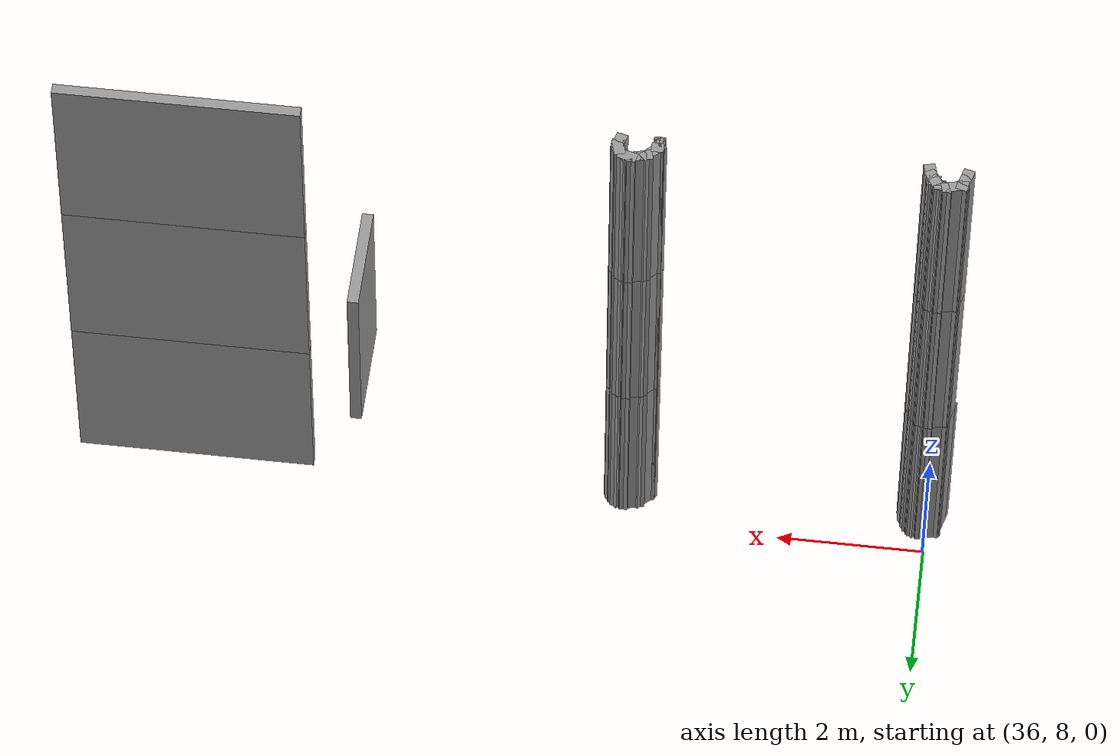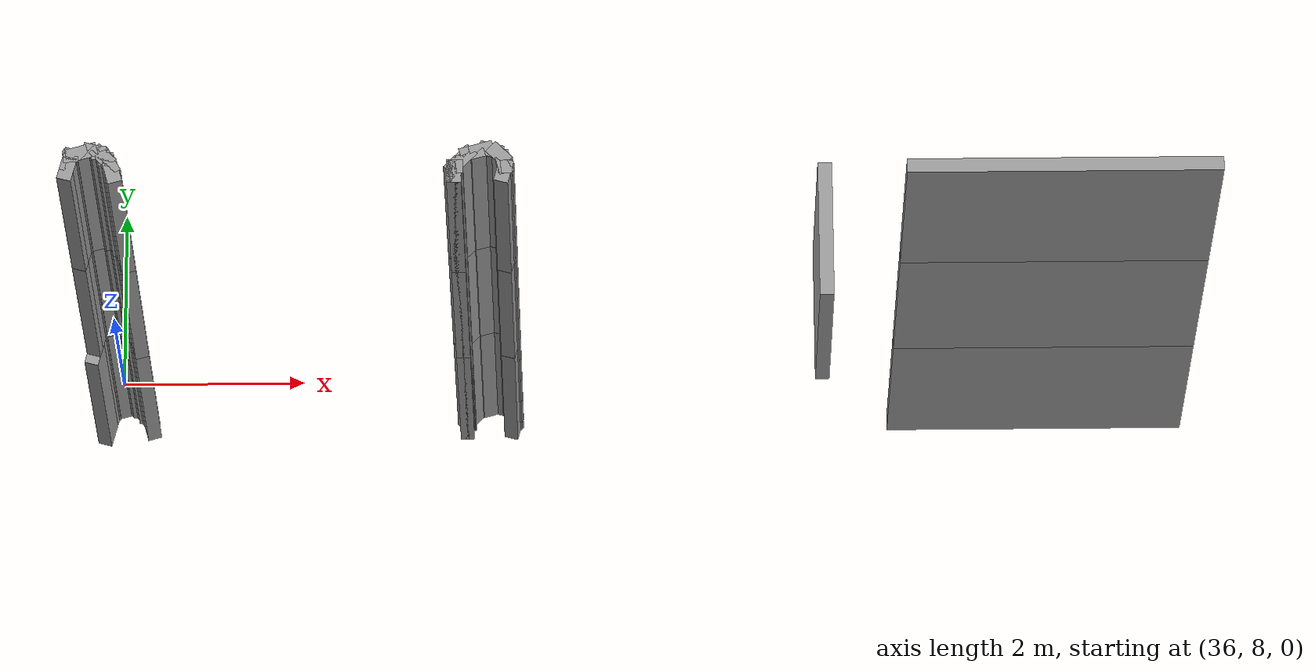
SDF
<sdf version="1.7">
 <model name="mapagazebo">
  <pose>-4.67869 9.01252 0 0 -0 0</pose>
  <link name="Wall_1186">
   <collision name="Wall_1186_Collision">
    <geometry><box><size>1.5 0.15 2.5</size></box></geometry>
    <pose>0 0 1.25 0 -0 0</pose>
   </collision>
   <visual name="Wall_1186_Visual">
    <pose>0 0 1.25 0 -0 0</pose>
    <geometry><box><size>1.5 0.15 2.5</size></box></geometry>
    <material>
     <script><uri>file://media/materials/scripts/gazebo.material</uri><name>Gazebo/Grey</name></script>
     <ambient>1 1 1 1</ambient>
    </material>
    <meta><layer>1</layer></meta>
   </visual>
   <pose>48.3712 -1.2235 2.5 0 -0 -1.5708</pose>
  </link>
  <link name="Wall_1189">
   <collision name="Wall_1189_Collision">
    <geometry><box><size>3.25 0.15 2.5</size></box></geometry>
    <pose>0 0 1.25 0 -0 0</pose>
   </collision>
   <visual name="Wall_1189_Visual">
    <pose>0 0 1.25 0 -0 0</pose>
    <geometry><box><size>3.25 0.15 2.5</size></box></geometry>
    <material>
     <script><uri>file://media/materials/scripts/gazebo.material</uri><name>Gazebo/Grey</name></script>
     <ambient>1 1 1 1</ambient>
    </material>
    <meta><layer>1</layer></meta>
   </visual>
   <pose>50.7712 -1.5485 2.5 0 -0 0</pose>
  </link>
  <link name="Wall_1301">
   <collision name="Wall_1301_Collision">
    <geometry><box><size>0.25 0.15 2.5</size></box></geometry>
    <pose>0 0 1.25 0 -0 0</pose>
   </collision>
   <visual name="Wall_1301_Visual">
    <pose>0 0 1.25 0 -0 0</pose>
    <geometry><box><size>0.25 0.15 2.5</size></box></geometry>
    <material>
     <script><uri>file://media/materials/scripts/gazebo.material</uri><name>Gazebo/Grey</name></script>
     <ambient>1 1 1 1</ambient>
    </material>
    <meta><layer>1</layer></meta>
   </visual>
   <pose>40.5287 -1.50789 2.5 0 -0 1.309</pose>
  </link>
  <link name="Wall_1302">
   <collision name="Wall_1302_Collision">
    <geometry><box><size>0.25 0.15 2.5</size></box></geometry>
    <pose>0 0 1.25 0 -0 0</pose>
   </collision>
   <visual name="Wall_1302_Visual">
    <pose>0 0 1.25 0 -0 0</pose>
    <geometry><box><size>0.25 0.15 2.5</size></box></geometry>
    <material>
     <script><uri>file://media/materials/scripts/gazebo.material</uri><name>Gazebo/Grey</name></script>
     <ambient>1 1 1 1</ambient>
    </material>
    <meta><layer>1</layer></meta>
   </visual>
   <pose>40.5546 -1.41129 2.5 0 -0 1.309</pose>
  </link>
  <link name="Wall_1303">
   <collision name="Wall_1303_Collision">
    <geometry><box><size>0.15 0.15 2.5</size></box></geometry>
    <pose>0 0 1.25 0 -0 0</pose>
   </collision>
   <visual name="Wall_1303_Visual">
    <pose>0 0 1.25 0 -0 0</pose>
    <geometry><box><size>0.15 0.15 2.5</size></box></geometry>
    <material>
     <script><uri>file://media/materials/scripts/gazebo.material</uri><name>Gazebo/Grey</name></script>
     <ambient>1 1 1 1</ambient>
    </material>
    <meta><layer>1</layer></meta>
   </visual>
   <pose>40.5676 -1.363 2.5 0 -0 0</pose>
  </link>
  <link name="Wall_1304">
   <collision name="Wall_1304_Collision">
    <geometry><box><size>0.25 0.15 2.5</size></box></geometry>
    <pose>0 0 1.25 0 -0 0</pose>
   </collision>
   <visual name="Wall_1304_Visual">
    <pose>0 0 1.25 0 -0 0</pose>
    <geometry><box><size>0.25 0.15 2.5</size></box></geometry>
    <material>
     <script><uri>file://media/materials/scripts/gazebo.material</uri><name>Gazebo/Grey</name></script>
     <ambient>1 1 1 1</ambient>
    </material>
    <meta><layer>1</layer></meta>
   </visual>
   <pose>40.6159 -1.35006 2.5 0 -0 0.261799</pose>
  </link>
  <link name="Wall_1305">
   <collision name="Wall_1305_Collision">
    <geometry><box><size>0.25 0.15 2.5</size></box></geometry>
    <pose>0 0 1.25 0 -0 0</pose>
   </collision>
   <visual name="Wall_1305_Visual">
    <pose>0 0 1.25 0 -0 0</pose>
    <geometry><box><size>0.25 0.15 2.5</size></box></geometry>
    <material>
     <script><uri>file://media/materials/scripts/gazebo.material</uri><name>Gazebo/Grey</name></script>
     <ambient>1 1 1 1</ambient>
    </material>
    <meta><layer>1</layer></meta>
   </visual>
   <pose>40.7125 -1.32418 2.5 0 -0 0.261799</pose>
  </link>
  <link name="Wall_1306">
   <collision name="Wall_1306_Collision">
    <geometry><box><size>0.25 0.15 2.5</size></box></geometry>
    <pose>0 0 1.25 0 -0 0</pose>
   </collision>
   <visual name="Wall_1306_Visual">
    <pose>0 0 1.25 0 -0 0</pose>
    <geometry><box><size>0.25 0.15 2.5</size></box></geometry>
    <material>
     <script><uri>file://media/materials/scripts/gazebo.material</uri><name>Gazebo/Grey</name></script>
     <ambient>1 1 1 1</ambient>
    </material>
    <meta><layer>1</layer></meta>
   </visual>
   <pose>40.809 -1.32418 2.5 0 -0 -0.261799</pose>
  </link>
  <link name="Wall_1307">
   <collision name="Wall_1307_Collision">
    <geometry><box><size>0.15 0.15 2.5</size></box></geometry>
    <pose>0 0 1.25 0 -0 0</pose>
   </collision>
   <visual name="Wall_1307_Visual">
    <pose>0 0 1.25 0 -0 0</pose>
    <geometry><box><size>0.15 0.15 2.5</size></box></geometry>
    <material>
     <script><uri>file://media/materials/scripts/gazebo.material</uri><name>Gazebo/Grey</name></script>
     <ambient>1 1 1 1</ambient>
    </material>
    <meta><layer>1</layer></meta>
   </visual>
   <pose>40.8573 -1.33712 2.5 0 -0 0</pose>
  </link>
  <link name="Wall_1308">
   <collision name="Wall_1308_Collision">
    <geometry><box><size>0.25 0.15 2.5</size></box></geometry>
    <pose>0 0 1.25 0 -0 0</pose>
   </collision>
   <visual name="Wall_1308_Visual">
    <pose>0 0 1.25 0 -0 0</pose>
    <geometry><box><size>0.25 0.15 2.5</size></box></geometry>
    <material>
     <script><uri>file://media/materials/scripts/gazebo.material</uri><name>Gazebo/Grey</name></script>
     <ambient>1 1 1 1</ambient>
    </material>
    <meta><layer>1</layer></meta>
   </visual>
   <pose>40.8927 -1.37247 2.5 0 -0 -0.785398</pose>
  </link>
  <link name="Wall_1309">
   <collision name="Wall_1309_Collision">
    <geometry><box><size>0.15 0.15 2.5</size></box></geometry>
    <pose>0 0 1.25 0 -0 0</pose>
   </collision>
   <visual name="Wall_1309_Visual">
    <pose>0 0 1.25 0 -0 0</pose>
    <geometry><box><size>0.15 0.15 2.5</size></box></geometry>
    <material>
     <script><uri>file://media/materials/scripts/gazebo.material</uri><name>Gazebo/Grey</name></script>
     <ambient>1 1 1 1</ambient>
    </material>
    <meta><layer>1</layer></meta>
   </visual>
   <pose>40.9281 -1.40783 2.5 0 -0 0</pose>
  </link>
  <link name="Wall_1310">
   <collision name="Wall_1310_Collision">
    <geometry><box><size>0.25 0.15 2.5</size></box></geometry>
    <pose>0 0 1.25 0 -0 0</pose>
   </collision>
   <visual name="Wall_1310_Visual">
    <pose>0 0 1.25 0 -0 0</pose>
    <geometry><box><size>0.25 0.15 2.5</size></box></geometry>
    <material>
     <script><uri>file://media/materials/scripts/gazebo.material</uri><name>Gazebo/Grey</name></script>
     <ambient>1 1 1 1</ambient>
    </material>
    <meta><layer>1</layer></meta>
   </visual>
   <pose>40.9531 -1.45113 2.5 0 -0 -1.0472</pose>
  </link>
  <link name="Wall_1311">
   <collision name="Wall_1311_Collision">
    <geometry><box><size>0.25 0.15 2.5</size></box></geometry>
    <pose>0 0 1.25 0 -0 0</pose>
   </collision>
   <visual name="Wall_1311_Visual">
    <pose>0 0 1.25 0 -0 0</pose>
    <geometry><box><size>0.25 0.15 2.5</size></box></geometry>
    <material>
     <script><uri>file://media/materials/scripts/gazebo.material</uri><name>Gazebo/Grey</name></script>
     <ambient>1 1 1 1</ambient>
    </material>
    <meta><layer>1</layer></meta>
   </visual>
   <pose>40.991 -1.54273 2.5 0 -0 -1.309</pose>
  </link>
  <link name="Wall_1319">
   <collision name="Wall_1319_Collision">
    <geometry><box><size>0.25 0.15 2.5</size></box></geometry>
    <pose>0 0 1.25 0 -0 0</pose>
   </collision>
   <visual name="Wall_1319_Visual">
    <pose>0 0 1.25 0 -0 0</pose>
    <geometry><box><size>0.25 0.15 2.5</size></box></geometry>
    <material>
     <script><uri>file://media/materials/scripts/gazebo.material</uri><name>Gazebo/Grey</name></script>
     <ambient>1 1 1 1</ambient>
    </material>
    <meta><layer>1</layer></meta>
   </visual>
   <pose>44.4946 -1.56808 2.5 0 -0 1.5708</pose>
  </link>
  <link name="Wall_1320">
   <collision name="Wall_1320_Collision">
    <geometry><box><size>0.25 0.15 2.5</size></box></geometry>
    <pose>0 0 1.25 0 -0 0</pose>
   </collision>
   <visual name="Wall_1320_Visual">
    <pose>0 0 1.25 0 -0 0</pose>
    <geometry><box><size>0.25 0.15 2.5</size></box></geometry>
    <material>
     <script><uri>file://media/materials/scripts/gazebo.material</uri><name>Gazebo/Grey</name></script>
     <ambient>1 1 1 1</ambient>
    </material>
    <meta><layer>1</layer></meta>
   </visual>
   <pose>44.4946 -1.56808 2.5 0 -0 -1.5708</pose>
  </link>
  <link name="Wall_1321">
   <collision name="Wall_1321_Collision">
    <geometry><box><size>0.25 0.15 2.5</size></box></geometry>
    <pose>0 0 1.25 0 -0 0</pose>
   </collision>
   <visual name="Wall_1321_Visual">
    <pose>0 0 1.25 0 -0 0</pose>
    <geometry><box><size>0.25 0.15 2.5</size></box></geometry>
    <material>
     <script><uri>file://media/materials/scripts/gazebo.material</uri><name>Gazebo/Grey</name></script>
     <ambient>1 1 1 1</ambient>
    </material>
    <meta><layer>1</layer></meta>
   </visual>
   <pose>44.4946 -1.56808 2.5 0 -0 1.5708</pose>
  </link>
  <link name="Wall_1322">
   <collision name="Wall_1322_Collision">
    <geometry><box><size>0.25 0.15 2.5</size></box></geometry>
    <pose>0 0 1.25 0 -0 0</pose>
   </collision>
   <visual name="Wall_1322_Visual">
    <pose>0 0 1.25 0 -0 0</pose>
    <geometry><box><size>0.25 0.15 2.5</size></box></geometry>
    <material>
     <script><uri>file://media/materials/scripts/gazebo.material</uri><name>Gazebo/Grey</name></script>
     <ambient>1 1 1 1</ambient>
    </material>
    <meta><layer>1</layer></meta>
   </visual>
   <pose>44.53 -1.48273 2.5 0 -0 0.785398</pose>
  </link>
  <link name="Wall_1323">
   <collision name="Wall_1323_Collision">
    <geometry><box><size>0.25 0.15 2.5</size></box></geometry>
    <pose>0 0 1.25 0 -0 0</pose>
   </collision>
   <visual name="Wall_1323_Visual">
    <pose>0 0 1.25 0 -0 0</pose>
    <geometry><box><size>0.25 0.15 2.5</size></box></geometry>
    <material>
     <script><uri>file://media/materials/scripts/gazebo.material</uri><name>Gazebo/Grey</name></script>
     <ambient>1 1 1 1</ambient>
    </material>
    <meta><layer>1</layer></meta>
   </visual>
   <pose>44.6007 -1.41202 2.5 0 -0 0.785398</pose>
  </link>
  <link name="Wall_1324">
   <collision name="Wall_1324_Collision">
    <geometry><box><size>0.25 0.15 2.5</size></box></geometry>
    <pose>0 0 1.25 0 -0 0</pose>
   </collision>
   <visual name="Wall_1324_Visual">
    <pose>0 0 1.25 0 -0 0</pose>
    <geometry><box><size>0.25 0.15 2.5</size></box></geometry>
    <material>
     <script><uri>file://media/materials/scripts/gazebo.material</uri><name>Gazebo/Grey</name></script>
     <ambient>1 1 1 1</ambient>
    </material>
    <meta><layer>1</layer></meta>
   </visual>
   <pose>44.6843 -1.36372 2.5 0 -0 0.261799</pose>
  </link>
  <link name="Wall_1325">
   <collision name="Wall_1325_Collision">
    <geometry><box><size>0.25 0.15 2.5</size></box></geometry>
    <pose>0 0 1.25 0 -0 0</pose>
   </collision>
   <visual name="Wall_1325_Visual">
    <pose>0 0 1.25 0 -0 0</pose>
    <geometry><box><size>0.25 0.15 2.5</size></box></geometry>
    <material>
     <script><uri>file://media/materials/scripts/gazebo.material</uri><name>Gazebo/Grey</name></script>
     <ambient>1 1 1 1</ambient>
    </material>
    <meta><layer>1</layer></meta>
   </visual>
   <pose>44.7809 -1.33784 2.5 0 -0 0.261799</pose>
  </link>
  <link name="Wall_1326">
   <collision name="Wall_1326_Collision">
    <geometry><box><size>0.25 0.15 2.5</size></box></geometry>
    <pose>0 0 1.25 0 -0 0</pose>
   </collision>
   <visual name="Wall_1326_Visual">
    <pose>0 0 1.25 0 -0 0</pose>
    <geometry><box><size>0.25 0.15 2.5</size></box></geometry>
    <material>
     <script><uri>file://media/materials/scripts/gazebo.material</uri><name>Gazebo/Grey</name></script>
     <ambient>1 1 1 1</ambient>
    </material>
    <meta><layer>1</layer></meta>
   </visual>
   <pose>44.8775 -1.33784 2.5 0 -0 -0.261799</pose>
  </link>
  <link name="Wall_1327">
   <collision name="Wall_1327_Collision">
    <geometry><box><size>0.25 0.15 2.5</size></box></geometry>
    <pose>0 0 1.25 0 -0 0</pose>
   </collision>
   <visual name="Wall_1327_Visual">
    <pose>0 0 1.25 0 -0 0</pose>
    <geometry><box><size>0.25 0.15 2.5</size></box></geometry>
    <material>
     <script><uri>file://media/materials/scripts/gazebo.material</uri><name>Gazebo/Grey</name></script>
     <ambient>1 1 1 1</ambient>
    </material>
    <meta><layer>1</layer></meta>
   </visual>
   <pose>44.9612 -1.38613 2.5 0 -0 -0.785398</pose>
  </link>
  <link name="Wall_1328">
   <collision name="Wall_1328_Collision">
    <geometry><box><size>0.25 0.15 2.5</size></box></geometry>
    <pose>0 0 1.25 0 -0 0</pose>
   </collision>
   <visual name="Wall_1328_Visual">
    <pose>0 0 1.25 0 -0 0</pose>
    <geometry><box><size>0.25 0.15 2.5</size></box></geometry>
    <material>
     <script><uri>file://media/materials/scripts/gazebo.material</uri><name>Gazebo/Grey</name></script>
     <ambient>1 1 1 1</ambient>
    </material>
    <meta><layer>1</layer></meta>
   </visual>
   <pose>45.0095 -1.46978 2.5 0 -0 -1.309</pose>
  </link>
  <link name="Wall_1329">
   <collision name="Wall_1329_Collision">
    <geometry><box><size>0.15 0.15 2.5</size></box></geometry>
    <pose>0 0 1.25 0 -0 0</pose>
   </collision>
   <visual name="Wall_1329_Visual">
    <pose>0 0 1.25 0 -0 0</pose>
    <geometry><box><size>0.15 0.15 2.5</size></box></geometry>
    <material>
     <script><uri>file://media/materials/scripts/gazebo.material</uri><name>Gazebo/Grey</name></script>
     <ambient>1 1 1 1</ambient>
    </material>
    <meta><layer>1</layer></meta>
   </visual>
   <pose>45.0224 -1.51808 2.5 0 -0 0</pose>
  </link>
  <link name="Wall_1330">
   <collision name="Wall_1330_Collision">
    <geometry><box><size>0.25 0.15 2.5</size></box></geometry>
    <pose>0 0 1.25 0 -0 0</pose>
   </collision>
   <visual name="Wall_1330_Visual">
    <pose>0 0 1.25 0 -0 0</pose>
    <geometry><box><size>0.25 0.15 2.5</size></box></geometry>
    <material>
     <script><uri>file://media/materials/scripts/gazebo.material</uri><name>Gazebo/Grey</name></script>
     <ambient>1 1 1 1</ambient>
    </material>
    <meta><layer>1</layer></meta>
   </visual>
   <pose>45.0095 -1.56638 2.5 0 -0 -1.8326</pose>
  </link>
  <link name="Wall_1337">
   <collision name="Wall_1337_Collision">
    <geometry><box><size>0.15 0.15 2.5</size></box></geometry>
    <pose>0 0 1.25 0 -0 0</pose>
   </collision>
   <visual name="Wall_1337_Visual">
    <pose>0 0 1.25 0 -0 0</pose>
    <geometry><box><size>0.15 0.15 2.5</size></box></geometry>
    <material>
     <script><uri>file://media/materials/scripts/gazebo.material</uri><name>Gazebo/Grey</name></script>
     <ambient>1 1 1 1</ambient>
    </material>
    <meta><layer>1</layer></meta>
   </visual>
   <pose>44.4946 -1.51808 2.5 0 -0 0</pose>
  </link>
  <link name="Wall_1338">
   <collision name="Wall_1338_Collision">
    <geometry><box><size>0.16 0.15 2.5</size></box></geometry>
    <pose>0 0 1.25 0 -0 0</pose>
   </collision>
   <visual name="Wall_1338_Visual">
    <pose>0 0 1.25 0 -0 0</pose>
    <geometry><box><size>0.16 0.15 2.5</size></box></geometry>
    <material>
     <script><uri>file://media/materials/scripts/gazebo.material</uri><name>Gazebo/Grey</name></script>
     <ambient>1 1 1 1</ambient>
    </material>
    <meta><layer>1</layer></meta>
   </visual>
   <pose>44.4996 -1.51808 2.5 0 -0 0</pose>
  </link>
  <link name="Wall_1339">
   <collision name="Wall_1339_Collision">
    <geometry><box><size>0.16 0.15 2.5</size></box></geometry>
    <pose>0 0 1.25 0 -0 0</pose>
   </collision>
   <visual name="Wall_1339_Visual">
    <pose>0 0 1.25 0 -0 0</pose>
    <geometry><box><size>0.16 0.15 2.5</size></box></geometry>
    <material>
     <script><uri>file://media/materials/scripts/gazebo.material</uri><name>Gazebo/Grey</name></script>
     <ambient>1 1 1 1</ambient>
    </material>
    <meta><layer>1</layer></meta>
   </visual>
   <pose>44.5096 -1.51808 2.5 0 -0 0</pose>
  </link>
  <link name="Wall_1813">
   <collision name="Wall_1813_Collision">
    <geometry><box><size>3.25 0.15 2.5</size></box></geometry>
    <pose>0 0 1.25 0 -0 0</pose>
   </collision>
   <visual name="Wall_1813_Visual">
    <pose>0 0 1.25 0 -0 0</pose>
    <geometry><box><size>3.25 0.15 2.5</size></box></geometry>
    <material>
     <script><uri>file://media/materials/scripts/gazebo.material</uri><name>Gazebo/Grey</name></script>
     <ambient>1 1 1 1</ambient>
    </material>
    <meta><layer>2</layer></meta>
   </visual>
   <pose>50.7712 -1.5485 5 0 -0 0</pose>
  </link>
  <link name="Wall_1925">
   <collision name="Wall_1925_Collision">
    <geometry><box><size>0.25 0.15 2.5</size></box></geometry>
    <pose>0 0 1.25 0 -0 0</pose>
   </collision>
   <visual name="Wall_1925_Visual">
    <pose>0 0 1.25 0 -0 0</pose>
    <geometry><box><size>0.25 0.15 2.5</size></box></geometry>
    <material>
     <script><uri>file://media/materials/scripts/gazebo.material</uri><name>Gazebo/Grey</name></script>
     <ambient>1 1 1 1</ambient>
    </material>
    <meta><layer>2</layer></meta>
   </visual>
   <pose>40.5287 -1.50789 5 0 -0 1.309</pose>
  </link>
  <link name="Wall_1926">
   <collision name="Wall_1926_Collision">
    <geometry><box><size>0.25 0.15 2.5</size></box></geometry>
    <pose>0 0 1.25 0 -0 0</pose>
   </collision>
   <visual name="Wall_1926_Visual">
    <pose>0 0 1.25 0 -0 0</pose>
    <geometry><box><size>0.25 0.15 2.5</size></box></geometry>
    <material>
     <script><uri>file://media/materials/scripts/gazebo.material</uri><name>Gazebo/Grey</name></script>
     <ambient>1 1 1 1</ambient>
    </material>
    <meta><layer>2</layer></meta>
   </visual>
   <pose>40.5546 -1.41129 5 0 -0 1.309</pose>
  </link>
  <link name="Wall_1927">
   <collision name="Wall_1927_Collision">
    <geometry><box><size>0.15 0.15 2.5</size></box></geometry>
    <pose>0 0 1.25 0 -0 0</pose>
   </collision>
   <visual name="Wall_1927_Visual">
    <pose>0 0 1.25 0 -0 0</pose>
    <geometry><box><size>0.15 0.15 2.5</size></box></geometry>
    <material>
     <script><uri>file://media/materials/scripts/gazebo.material</uri><name>Gazebo/Grey</name></script>
     <ambient>1 1 1 1</ambient>
    </material>
    <meta><layer>2</layer></meta>
   </visual>
   <pose>40.5676 -1.363 5 0 -0 0</pose>
  </link>
  <link name="Wall_1928">
   <collision name="Wall_1928_Collision">
    <geometry><box><size>0.25 0.15 2.5</size></box></geometry>
    <pose>0 0 1.25 0 -0 0</pose>
   </collision>
   <visual name="Wall_1928_Visual">
    <pose>0 0 1.25 0 -0 0</pose>
    <geometry><box><size>0.25 0.15 2.5</size></box></geometry>
    <material>
     <script><uri>file://media/materials/scripts/gazebo.material</uri><name>Gazebo/Grey</name></script>
     <ambient>1 1 1 1</ambient>
    </material>
    <meta><layer>2</layer></meta>
   </visual>
   <pose>40.6159 -1.35006 5 0 -0 0.261799</pose>
  </link>
  <link name="Wall_1929">
   <collision name="Wall_1929_Collision">
    <geometry><box><size>0.25 0.15 2.5</size></box></geometry>
    <pose>0 0 1.25 0 -0 0</pose>
   </collision>
   <visual name="Wall_1929_Visual">
    <pose>0 0 1.25 0 -0 0</pose>
    <geometry><box><size>0.25 0.15 2.5</size></box></geometry>
    <material>
     <script><uri>file://media/materials/scripts/gazebo.material</uri><name>Gazebo/Grey</name></script>
     <ambient>1 1 1 1</ambient>
    </material>
    <meta><layer>2</layer></meta>
   </visual>
   <pose>40.7125 -1.32418 5 0 -0 0.261799</pose>
  </link>
  <link name="Wall_1930">
   <collision name="Wall_1930_Collision">
    <geometry><box><size>0.25 0.15 2.5</size></box></geometry>
    <pose>0 0 1.25 0 -0 0</pose>
   </collision>
   <visual name="Wall_1930_Visual">
    <pose>0 0 1.25 0 -0 0</pose>
    <geometry><box><size>0.25 0.15 2.5</size></box></geometry>
    <material>
     <script><uri>file://media/materials/scripts/gazebo.material</uri><name>Gazebo/Grey</name></script>
     <ambient>1 1 1 1</ambient>
    </material>
    <meta><layer>2</layer></meta>
   </visual>
   <pose>40.809 -1.32418 5 0 -0 -0.261799</pose>
  </link>
  <link name="Wall_1931">
   <collision name="Wall_1931_Collision">
    <geometry><box><size>0.15 0.15 2.5</size></box></geometry>
    <pose>0 0 1.25 0 -0 0</pose>
   </collision>
   <visual name="Wall_1931_Visual">
    <pose>0 0 1.25 0 -0 0</pose>
    <geometry><box><size>0.15 0.15 2.5</size></box></geometry>
    <material>
     <script><uri>file://media/materials/scripts/gazebo.material</uri><name>Gazebo/Grey</name></script>
     <ambient>1 1 1 1</ambient>
    </material>
    <meta><layer>2</layer></meta>
   </visual>
   <pose>40.8573 -1.33712 5 0 -0 0</pose>
  </link>
  <link name="Wall_1932">
   <collision name="Wall_1932_Collision">
    <geometry><box><size>0.25 0.15 2.5</size></box></geometry>
    <pose>0 0 1.25 0 -0 0</pose>
   </collision>
   <visual name="Wall_1932_Visual">
    <pose>0 0 1.25 0 -0 0</pose>
    <geometry><box><size>0.25 0.15 2.5</size></box></geometry>
    <material>
     <script><uri>file://media/materials/scripts/gazebo.material</uri><name>Gazebo/Grey</name></script>
     <ambient>1 1 1 1</ambient>
    </material>
    <meta><layer>2</layer></meta>
   </visual>
   <pose>40.8927 -1.37247 5 0 -0 -0.785398</pose>
  </link>
  <link name="Wall_1933">
   <collision name="Wall_1933_Collision">
    <geometry><box><size>0.15 0.15 2.5</size></box></geometry>
    <pose>0 0 1.25 0 -0 0</pose>
   </collision>
   <visual name="Wall_1933_Visual">
    <pose>0 0 1.25 0 -0 0</pose>
    <geometry><box><size>0.15 0.15 2.5</size></box></geometry>
    <material>
     <script><uri>file://media/materials/scripts/gazebo.material</uri><name>Gazebo/Grey</name></script>
     <ambient>1 1 1 1</ambient>
    </material>
    <meta><layer>2</layer></meta>
   </visual>
   <pose>40.9281 -1.40783 5 0 -0 0</pose>
  </link>
  <link name="Wall_1934">
   <collision name="Wall_1934_Collision">
    <geometry><box><size>0.25 0.15 2.5</size></box></geometry>
    <pose>0 0 1.25 0 -0 0</pose>
   </collision>
   <visual name="Wall_1934_Visual">
    <pose>0 0 1.25 0 -0 0</pose>
    <geometry><box><size>0.25 0.15 2.5</size></box></geometry>
    <material>
     <script><uri>file://media/materials/scripts/gazebo.material</uri><name>Gazebo/Grey</name></script>
     <ambient>1 1 1 1</ambient>
    </material>
    <meta><layer>2</layer></meta>
   </visual>
   <pose>40.9531 -1.45113 5 0 -0 -1.0472</pose>
  </link>
  <link name="Wall_1935">
   <collision name="Wall_1935_Collision">
    <geometry><box><size>0.25 0.15 2.5</size></box></geometry>
    <pose>0 0 1.25 0 -0 0</pose>
   </collision>
   <visual name="Wall_1935_Visual">
    <pose>0 0 1.25 0 -0 0</pose>
    <geometry><box><size>0.25 0.15 2.5</size></box></geometry>
    <material>
     <script><uri>file://media/materials/scripts/gazebo.material</uri><name>Gazebo/Grey</name></script>
     <ambient>1 1 1 1</ambient>
    </material>
    <meta><layer>2</layer></meta>
   </visual>
   <pose>40.991 -1.54273 5 0 -0 -1.309</pose>
  </link>
  <link name="Wall_1943">
   <collision name="Wall_1943_Collision">
    <geometry><box><size>0.25 0.15 2.5</size></box></geometry>
    <pose>0 0 1.25 0 -0 0</pose>
   </collision>
   <visual name="Wall_1943_Visual">
    <pose>0 0 1.25 0 -0 0</pose>
    <geometry><box><size>0.25 0.15 2.5</size></box></geometry>
    <material>
     <script><uri>file://media/materials/scripts/gazebo.material</uri><name>Gazebo/Grey</name></script>
     <ambient>1 1 1 1</ambient>
    </material>
    <meta><layer>2</layer></meta>
   </visual>
   <pose>44.4946 -1.56808 5 0 -0 1.5708</pose>
  </link>
  <link name="Wall_1944">
   <collision name="Wall_1944_Collision">
    <geometry><box><size>0.25 0.15 2.5</size></box></geometry>
    <pose>0 0 1.25 0 -0 0</pose>
   </collision>
   <visual name="Wall_1944_Visual">
    <pose>0 0 1.25 0 -0 0</pose>
    <geometry><box><size>0.25 0.15 2.5</size></box></geometry>
    <material>
     <script><uri>file://media/materials/scripts/gazebo.material</uri><name>Gazebo/Grey</name></script>
     <ambient>1 1 1 1</ambient>
    </material>
    <meta><layer>2</layer></meta>
   </visual>
   <pose>44.4946 -1.56808 5 0 -0 -1.5708</pose>
  </link>
  <link name="Wall_1945">
   <collision name="Wall_1945_Collision">
    <geometry><box><size>0.25 0.15 2.5</size></box></geometry>
    <pose>0 0 1.25 0 -0 0</pose>
   </collision>
   <visual name="Wall_1945_Visual">
    <pose>0 0 1.25 0 -0 0</pose>
    <geometry><box><size>0.25 0.15 2.5</size></box></geometry>
    <material>
     <script><uri>file://media/materials/scripts/gazebo.material</uri><name>Gazebo/Grey</name></script>
     <ambient>1 1 1 1</ambient>
    </material>
    <meta><layer>2</layer></meta>
   </visual>
   <pose>44.4946 -1.56808 5 0 -0 1.5708</pose>
  </link>
  <link name="Wall_1946">
   <collision name="Wall_1946_Collision">
    <geometry><box><size>0.25 0.15 2.5</size></box></geometry>
    <pose>0 0 1.25 0 -0 0</pose>
   </collision>
   <visual name="Wall_1946_Visual">
    <pose>0 0 1.25 0 -0 0</pose>
    <geometry><box><size>0.25 0.15 2.5</size></box></geometry>
    <material>
     <script><uri>file://media/materials/scripts/gazebo.material</uri><name>Gazebo/Grey</name></script>
     <ambient>1 1 1 1</ambient>
    </material>
    <meta><layer>2</layer></meta>
   </visual>
   <pose>44.53 -1.48273 5 0 -0 0.785398</pose>
  </link>
  <link name="Wall_1947">
   <collision name="Wall_1947_Collision">
    <geometry><box><size>0.25 0.15 2.5</size></box></geometry>
    <pose>0 0 1.25 0 -0 0</pose>
   </collision>
   <visual name="Wall_1947_Visual">
    <pose>0 0 1.25 0 -0 0</pose>
    <geometry><box><size>0.25 0.15 2.5</size></box></geometry>
    <material>
     <script><uri>file://media/materials/scripts/gazebo.material</uri><name>Gazebo/Grey</name></script>
     <ambient>1 1 1 1</ambient>
    </material>
    <meta><layer>2</layer></meta>
   </visual>
   <pose>44.6007 -1.41202 5 0 -0 0.785398</pose>
  </link>
  <link name="Wall_1948">
   <collision name="Wall_1948_Collision">
    <geometry><box><size>0.25 0.15 2.5</size></box></geometry>
    <pose>0 0 1.25 0 -0 0</pose>
   </collision>
   <visual name="Wall_1948_Visual">
    <pose>0 0 1.25 0 -0 0</pose>
    <geometry><box><size>0.25 0.15 2.5</size></box></geometry>
    <material>
     <script><uri>file://media/materials/scripts/gazebo.material</uri><name>Gazebo/Grey</name></script>
     <ambient>1 1 1 1</ambient>
    </material>
    <meta><layer>2</layer></meta>
   </visual>
   <pose>44.6843 -1.36372 5 0 -0 0.261799</pose>
  </link>
  <link name="Wall_1949">
   <collision name="Wall_1949_Collision">
    <geometry><box><size>0.25 0.15 2.5</size></box></geometry>
    <pose>0 0 1.25 0 -0 0</pose>
   </collision>
   <visual name="Wall_1949_Visual">
    <pose>0 0 1.25 0 -0 0</pose>
    <geometry><box><size>0.25 0.15 2.5</size></box></geometry>
    <material>
     <script><uri>file://media/materials/scripts/gazebo.material</uri><name>Gazebo/Grey</name></script>
     <ambient>1 1 1 1</ambient>
    </material>
    <meta><layer>2</layer></meta>
   </visual>
   <pose>44.7809 -1.33784 5 0 -0 0.261799</pose>
  </link>
  <link name="Wall_1950">
   <collision name="Wall_1950_Collision">
    <geometry><box><size>0.25 0.15 2.5</size></box></geometry>
    <pose>0 0 1.25 0 -0 0</pose>
   </collision>
   <visual name="Wall_1950_Visual">
    <pose>0 0 1.25 0 -0 0</pose>
    <geometry><box><size>0.25 0.15 2.5</size></box></geometry>
    <material>
     <script><uri>file://media/materials/scripts/gazebo.material</uri><name>Gazebo/Grey</name></script>
     <ambient>1 1 1 1</ambient>
    </material>
    <meta><layer>2</layer></meta>
   </visual>
   <pose>44.8775 -1.33784 5 0 -0 -0.261799</pose>
  </link>
  <link name="Wall_1951">
   <collision name="Wall_1951_Collision">
    <geometry><box><size>0.25 0.15 2.5</size></box></geometry>
    <pose>0 0 1.25 0 -0 0</pose>
   </collision>
   <visual name="Wall_1951_Visual">
    <pose>0 0 1.25 0 -0 0</pose>
    <geometry><box><size>0.25 0.15 2.5</size></box></geometry>
    <material>
     <script><uri>file://media/materials/scripts/gazebo.material</uri><name>Gazebo/Grey</name></script>
     <ambient>1 1 1 1</ambient>
    </material>
    <meta><layer>2</layer></meta>
   </visual>
   <pose>44.9612 -1.38613 5 0 -0 -0.785398</pose>
  </link>
  <link name="Wall_1952">
   <collision name="Wall_1952_Collision">
    <geometry><box><size>0.25 0.15 2.5</size></box></geometry>
    <pose>0 0 1.25 0 -0 0</pose>
   </collision>
   <visual name="Wall_1952_Visual">
    <pose>0 0 1.25 0 -0 0</pose>
    <geometry><box><size>0.25 0.15 2.5</size></box></geometry>
    <material>
     <script><uri>file://media/materials/scripts/gazebo.material</uri><name>Gazebo/Grey</name></script>
     <ambient>1 1 1 1</ambient>
    </material>
    <meta><layer>2</layer></meta>
   </visual>
   <pose>45.0095 -1.46978 5 0 -0 -1.309</pose>
  </link>
  <link name="Wall_1953">
   <collision name="Wall_1953_Collision">
    <geometry><box><size>0.15 0.15 2.5</size></box></geometry>
    <pose>0 0 1.25 0 -0 0</pose>
   </collision>
   <visual name="Wall_1953_Visual">
    <pose>0 0 1.25 0 -0 0</pose>
    <geometry><box><size>0.15 0.15 2.5</size></box></geometry>
    <material>
     <script><uri>file://media/materials/scripts/gazebo.material</uri><name>Gazebo/Grey</name></script>
     <ambient>1 1 1 1</ambient>
    </material>
    <meta><layer>2</layer></meta>
   </visual>
   <pose>45.0224 -1.51808 5 0 -0 0</pose>
  </link>
  <link name="Wall_1954">
   <collision name="Wall_1954_Collision">
    <geometry><box><size>0.25 0.15 2.5</size></box></geometry>
    <pose>0 0 1.25 0 -0 0</pose>
   </collision>
   <visual name="Wall_1954_Visual">
    <pose>0 0 1.25 0 -0 0</pose>
    <geometry><box><size>0.25 0.15 2.5</size></box></geometry>
    <material>
     <script><uri>file://media/materials/scripts/gazebo.material</uri><name>Gazebo/Grey</name></script>
     <ambient>1 1 1 1</ambient>
    </material>
    <meta><layer>2</layer></meta>
   </visual>
   <pose>45.0095 -1.56638 5 0 -0 -1.8326</pose>
  </link>
  <link name="Wall_1961">
   <collision name="Wall_1961_Collision">
    <geometry><box><size>0.15 0.15 2.5</size></box></geometry>
    <pose>0 0 1.25 0 -0 0</pose>
   </collision>
   <visual name="Wall_1961_Visual">
    <pose>0 0 1.25 0 -0 0</pose>
    <geometry><box><size>0.15 0.15 2.5</size></box></geometry>
    <material>
     <script><uri>file://media/materials/scripts/gazebo.material</uri><name>Gazebo/Grey</name></script>
     <ambient>1 1 1 1</ambient>
    </material>
    <meta><layer>2</layer></meta>
   </visual>
   <pose>44.4946 -1.51808 5 0 -0 0</pose>
  </link>
  <link name="Wall_1962">
   <collision name="Wall_1962_Collision">
    <geometry><box><size>0.16 0.15 2.5</size></box></geometry>
    <pose>0 0 1.25 0 -0 0</pose>
   </collision>
   <visual name="Wall_1962_Visual">
    <pose>0 0 1.25 0 -0 0</pose>
    <geometry><box><size>0.16 0.15 2.5</size></box></geometry>
    <material>
     <script><uri>file://media/materials/scripts/gazebo.material</uri><name>Gazebo/Grey</name></script>
     <ambient>1 1 1 1</ambient>
    </material>
    <meta><layer>2</layer></meta>
   </visual>
   <pose>44.4996 -1.51808 5 0 -0 0</pose>
  </link>
  <link name="Wall_1963">
   <collision name="Wall_1963_Collision">
    <geometry><box><size>0.16 0.15 2.5</size></box></geometry>
    <pose>0 0 1.25 0 -0 0</pose>
   </collision>
   <visual name="Wall_1963_Visual">
    <pose>0 0 1.25 0 -0 0</pose>
    <geometry><box><size>0.16 0.15 2.5</size></box></geometry>
    <material>
     <script><uri>file://media/materials/scripts/gazebo.material</uri><name>Gazebo/Grey</name></script>
     <ambient>1 1 1 1</ambient>
    </material>
    <meta><layer>2</layer></meta>
   </visual>
   <pose>44.5096 -1.51808 5 0 -0 0</pose>
  </link>
  <link name="Wall_517">
   <collision name="Wall_517_Collision">
    <geometry><box><size>3.25 0.15 2.5</size></box></geometry>
    <pose>0 0 1.25 0 -0 0</pose>
   </collision>
   <visual name="Wall_517_Visual">
    <pose>0 0 1.25 0 -0 0</pose>
    <geometry><box><size>3.25 0.15 2.5</size></box></geometry>
    <material>
     <script><uri>file://media/materials/scripts/gazebo.material</uri><name>Gazebo/Grey</name></script>
     <ambient>1 1 1 1</ambient>
    </material>
    <meta><layer>0</layer></meta>
   </visual>
   <pose>50.7712 -1.5485 0 0 -0 0</pose>
  </link>
  <link name="Wall_666">
   <collision name="Wall_666_Collision">
    <geometry><box><size>0.25 0.15 2.5</size></box></geometry>
    <pose>0 0 1.25 0 -0 0</pose>
   </collision>
   <visual name="Wall_666_Visual">
    <pose>0 0 1.25 0 -0 0</pose>
    <geometry><box><size>0.25 0.15 2.5</size></box></geometry>
    <material>
     <script><uri>file://media/materials/scripts/gazebo.material</uri><name>Gazebo/Grey</name></script>
     <ambient>1 1 1 1</ambient>
    </material>
    <meta><layer>0</layer></meta>
   </visual>
   <pose>40.5029 -1.60448 0 0 -0 1.309</pose>
  </link>
  <link name="Wall_667">
   <collision name="Wall_667_Collision">
    <geometry><box><size>0.25 0.15 2.5</size></box></geometry>
    <pose>0 0 1.25 0 -0 0</pose>
   </collision>
   <visual name="Wall_667_Visual">
    <pose>0 0 1.25 0 -0 0</pose>
    <geometry><box><size>0.25 0.15 2.5</size></box></geometry>
    <material>
     <script><uri>file://media/materials/scripts/gazebo.material</uri><name>Gazebo/Grey</name></script>
     <ambient>1 1 1 1</ambient>
    </material>
    <meta><layer>0</layer></meta>
   </visual>
   <pose>40.5287 -1.50789 0 0 -0 1.309</pose>
  </link>
  <link name="Wall_668">
   <collision name="Wall_668_Collision">
    <geometry><box><size>0.25 0.15 2.5</size></box></geometry>
    <pose>0 0 1.25 0 -0 0</pose>
   </collision>
   <visual name="Wall_668_Visual">
    <pose>0 0 1.25 0 -0 0</pose>
    <geometry><box><size>0.25 0.15 2.5</size></box></geometry>
    <material>
     <script><uri>file://media/materials/scripts/gazebo.material</uri><name>Gazebo/Grey</name></script>
     <ambient>1 1 1 1</ambient>
    </material>
    <meta><layer>0</layer></meta>
   </visual>
   <pose>40.5546 -1.41129 0 0 -0 1.309</pose>
  </link>
  <link name="Wall_669">
   <collision name="Wall_669_Collision">
    <geometry><box><size>0.15 0.15 2.5</size></box></geometry>
    <pose>0 0 1.25 0 -0 0</pose>
   </collision>
   <visual name="Wall_669_Visual">
    <pose>0 0 1.25 0 -0 0</pose>
    <geometry><box><size>0.15 0.15 2.5</size></box></geometry>
    <material>
     <script><uri>file://media/materials/scripts/gazebo.material</uri><name>Gazebo/Grey</name></script>
     <ambient>1 1 1 1</ambient>
    </material>
    <meta><layer>0</layer></meta>
   </visual>
   <pose>40.5676 -1.363 0 0 -0 0</pose>
  </link>
  <link name="Wall_670">
   <collision name="Wall_670_Collision">
    <geometry><box><size>0.25 0.15 2.5</size></box></geometry>
    <pose>0 0 1.25 0 -0 0</pose>
   </collision>
   <visual name="Wall_670_Visual">
    <pose>0 0 1.25 0 -0 0</pose>
    <geometry><box><size>0.25 0.15 2.5</size></box></geometry>
    <material>
     <script><uri>file://media/materials/scripts/gazebo.material</uri><name>Gazebo/Grey</name></script>
     <ambient>1 1 1 1</ambient>
    </material>
    <meta><layer>0</layer></meta>
   </visual>
   <pose>40.6159 -1.35006 0 0 -0 0.261799</pose>
  </link>
  <link name="Wall_671">
   <collision name="Wall_671_Collision">
    <geometry><box><size>0.25 0.15 2.5</size></box></geometry>
    <pose>0 0 1.25 0 -0 0</pose>
   </collision>
   <visual name="Wall_671_Visual">
    <pose>0 0 1.25 0 -0 0</pose>
    <geometry><box><size>0.25 0.15 2.5</size></box></geometry>
    <material>
     <script><uri>file://media/materials/scripts/gazebo.material</uri><name>Gazebo/Grey</name></script>
     <ambient>1 1 1 1</ambient>
    </material>
    <meta><layer>0</layer></meta>
   </visual>
   <pose>40.7125 -1.32418 0 0 -0 0.261799</pose>
  </link>
  <link name="Wall_672">
   <collision name="Wall_672_Collision">
    <geometry><box><size>0.25 0.15 2.5</size></box></geometry>
    <pose>0 0 1.25 0 -0 0</pose>
   </collision>
   <visual name="Wall_672_Visual">
    <pose>0 0 1.25 0 -0 0</pose>
    <geometry><box><size>0.25 0.15 2.5</size></box></geometry>
    <material>
     <script><uri>file://media/materials/scripts/gazebo.material</uri><name>Gazebo/Grey</name></script>
     <ambient>1 1 1 1</ambient>
    </material>
    <meta><layer>0</layer></meta>
   </visual>
   <pose>40.809 -1.32418 0 0 -0 -0.261799</pose>
  </link>
  <link name="Wall_673">
   <collision name="Wall_673_Collision">
    <geometry><box><size>0.15 0.15 2.5</size></box></geometry>
    <pose>0 0 1.25 0 -0 0</pose>
   </collision>
   <visual name="Wall_673_Visual">
    <pose>0 0 1.25 0 -0 0</pose>
    <geometry><box><size>0.15 0.15 2.5</size></box></geometry>
    <material>
     <script><uri>file://media/materials/scripts/gazebo.material</uri><name>Gazebo/Grey</name></script>
     <ambient>1 1 1 1</ambient>
    </material>
    <meta><layer>0</layer></meta>
   </visual>
   <pose>40.8573 -1.33712 0 0 -0 0</pose>
  </link>
  <link name="Wall_674">
   <collision name="Wall_674_Collision">
    <geometry><box><size>0.25 0.15 2.5</size></box></geometry>
    <pose>0 0 1.25 0 -0 0</pose>
   </collision>
   <visual name="Wall_674_Visual">
    <pose>0 0 1.25 0 -0 0</pose>
    <geometry><box><size>0.25 0.15 2.5</size></box></geometry>
    <material>
     <script><uri>file://media/materials/scripts/gazebo.material</uri><name>Gazebo/Grey</name></script>
     <ambient>1 1 1 1</ambient>
    </material>
    <meta><layer>0</layer></meta>
   </visual>
   <pose>40.8927 -1.37247 0 0 -0 -0.785398</pose>
  </link>
  <link name="Wall_675">
   <collision name="Wall_675_Collision">
    <geometry><box><size>0.15 0.15 2.5</size></box></geometry>
    <pose>0 0 1.25 0 -0 0</pose>
   </collision>
   <visual name="Wall_675_Visual">
    <pose>0 0 1.25 0 -0 0</pose>
    <geometry><box><size>0.15 0.15 2.5</size></box></geometry>
    <material>
     <script><uri>file://media/materials/scripts/gazebo.material</uri><name>Gazebo/Grey</name></script>
     <ambient>1 1 1 1</ambient>
    </material>
    <meta><layer>0</layer></meta>
   </visual>
   <pose>40.9281 -1.40783 0 0 -0 0</pose>
  </link>
  <link name="Wall_676">
   <collision name="Wall_676_Collision">
    <geometry><box><size>0.25 0.15 2.5</size></box></geometry>
    <pose>0 0 1.25 0 -0 0</pose>
   </collision>
   <visual name="Wall_676_Visual">
    <pose>0 0 1.25 0 -0 0</pose>
    <geometry><box><size>0.25 0.15 2.5</size></box></geometry>
    <material>
     <script><uri>file://media/materials/scripts/gazebo.material</uri><name>Gazebo/Grey</name></script>
     <ambient>1 1 1 1</ambient>
    </material>
    <meta><layer>0</layer></meta>
   </visual>
   <pose>40.9531 -1.45113 0 0 -0 -1.0472</pose>
  </link>
  <link name="Wall_677">
   <collision name="Wall_677_Collision">
    <geometry><box><size>0.25 0.15 2.5</size></box></geometry>
    <pose>0 0 1.25 0 -0 0</pose>
   </collision>
   <visual name="Wall_677_Visual">
    <pose>0 0 1.25 0 -0 0</pose>
    <geometry><box><size>0.25 0.15 2.5</size></box></geometry>
    <material>
     <script><uri>file://media/materials/scripts/gazebo.material</uri><name>Gazebo/Grey</name></script>
     <ambient>1 1 1 1</ambient>
    </material>
    <meta><layer>0</layer></meta>
   </visual>
   <pose>40.991 -1.54273 0 0 -0 -1.309</pose>
  </link>
  <link name="Wall_686">
   <collision name="Wall_686_Collision">
    <geometry><box><size>0.25 0.15 2.5</size></box></geometry>
    <pose>0 0 1.25 0 -0 0</pose>
   </collision>
   <visual name="Wall_686_Visual">
    <pose>0 0 1.25 0 -0 0</pose>
    <geometry><box><size>0.25 0.15 2.5</size></box></geometry>
    <material>
     <script><uri>file://media/materials/scripts/gazebo.material</uri><name>Gazebo/Grey</name></script>
     <ambient>1 1 1 1</ambient>
    </material>
    <meta><layer>0</layer></meta>
   </visual>
   <pose>44.4946 -1.56808 0 0 -0 1.5708</pose>
  </link>
  <link name="Wall_687">
   <collision name="Wall_687_Collision">
    <geometry><box><size>0.25 0.15 2.5</size></box></geometry>
    <pose>0 0 1.25 0 -0 0</pose>
   </collision>
   <visual name="Wall_687_Visual">
    <pose>0 0 1.25 0 -0 0</pose>
    <geometry><box><size>0.25 0.15 2.5</size></box></geometry>
    <material>
     <script><uri>file://media/materials/scripts/gazebo.material</uri><name>Gazebo/Grey</name></script>
     <ambient>1 1 1 1</ambient>
    </material>
    <meta><layer>0</layer></meta>
   </visual>
   <pose>44.4946 -1.56808 0 0 -0 -1.5708</pose>
  </link>
  <link name="Wall_688">
   <collision name="Wall_688_Collision">
    <geometry><box><size>0.25 0.15 2.5</size></box></geometry>
    <pose>0 0 1.25 0 -0 0</pose>
   </collision>
   <visual name="Wall_688_Visual">
    <pose>0 0 1.25 0 -0 0</pose>
    <geometry><box><size>0.25 0.15 2.5</size></box></geometry>
    <material>
     <script><uri>file://media/materials/scripts/gazebo.material</uri><name>Gazebo/Grey</name></script>
     <ambient>1 1 1 1</ambient>
    </material>
    <meta><layer>0</layer></meta>
   </visual>
   <pose>44.4946 -1.56808 0 0 -0 1.5708</pose>
  </link>
  <link name="Wall_689">
   <collision name="Wall_689_Collision">
    <geometry><box><size>0.25 0.15 2.5</size></box></geometry>
    <pose>0 0 1.25 0 -0 0</pose>
   </collision>
   <visual name="Wall_689_Visual">
    <pose>0 0 1.25 0 -0 0</pose>
    <geometry><box><size>0.25 0.15 2.5</size></box></geometry>
    <material>
     <script><uri>file://media/materials/scripts/gazebo.material</uri><name>Gazebo/Grey</name></script>
     <ambient>1 1 1 1</ambient>
    </material>
    <meta><layer>0</layer></meta>
   </visual>
   <pose>44.53 -1.48273 0 0 -0 0.785398</pose>
  </link>
  <link name="Wall_690">
   <collision name="Wall_690_Collision">
    <geometry><box><size>0.25 0.15 2.5</size></box></geometry>
    <pose>0 0 1.25 0 -0 0</pose>
   </collision>
   <visual name="Wall_690_Visual">
    <pose>0 0 1.25 0 -0 0</pose>
    <geometry><box><size>0.25 0.15 2.5</size></box></geometry>
    <material>
     <script><uri>file://media/materials/scripts/gazebo.material</uri><name>Gazebo/Grey</name></script>
     <ambient>1 1 1 1</ambient>
    </material>
    <meta><layer>0</layer></meta>
   </visual>
   <pose>44.6007 -1.41202 0 0 -0 0.785398</pose>
  </link>
  <link name="Wall_691">
   <collision name="Wall_691_Collision">
    <geometry><box><size>0.25 0.15 2.5</size></box></geometry>
    <pose>0 0 1.25 0 -0 0</pose>
   </collision>
   <visual name="Wall_691_Visual">
    <pose>0 0 1.25 0 -0 0</pose>
    <geometry><box><size>0.25 0.15 2.5</size></box></geometry>
    <material>
     <script><uri>file://media/materials/scripts/gazebo.material</uri><name>Gazebo/Grey</name></script>
     <ambient>1 1 1 1</ambient>
    </material>
    <meta><layer>0</layer></meta>
   </visual>
   <pose>44.6843 -1.36372 0 0 -0 0.261799</pose>
  </link>
  <link name="Wall_692">
   <collision name="Wall_692_Collision">
    <geometry><box><size>0.25 0.15 2.5</size></box></geometry>
    <pose>0 0 1.25 0 -0 0</pose>
   </collision>
   <visual name="Wall_692_Visual">
    <pose>0 0 1.25 0 -0 0</pose>
    <geometry><box><size>0.25 0.15 2.5</size></box></geometry>
    <material>
     <script><uri>file://media/materials/scripts/gazebo.material</uri><name>Gazebo/Grey</name></script>
     <ambient>1 1 1 1</ambient>
    </material>
    <meta><layer>0</layer></meta>
   </visual>
   <pose>44.7809 -1.33784 0 0 -0 0.261799</pose>
  </link>
  <link name="Wall_693">
   <collision name="Wall_693_Collision">
    <geometry><box><size>0.25 0.15 2.5</size></box></geometry>
    <pose>0 0 1.25 0 -0 0</pose>
   </collision>
   <visual name="Wall_693_Visual">
    <pose>0 0 1.25 0 -0 0</pose>
    <geometry><box><size>0.25 0.15 2.5</size></box></geometry>
    <material>
     <script><uri>file://media/materials/scripts/gazebo.material</uri><name>Gazebo/Grey</name></script>
     <ambient>1 1 1 1</ambient>
    </material>
    <meta><layer>0</layer></meta>
   </visual>
   <pose>44.8775 -1.33784 0 0 -0 -0.261799</pose>
  </link>
  <link name="Wall_694">
   <collision name="Wall_694_Collision">
    <geometry><box><size>0.25 0.15 2.5</size></box></geometry>
    <pose>0 0 1.25 0 -0 0</pose>
   </collision>
   <visual name="Wall_694_Visual">
    <pose>0 0 1.25 0 -0 0</pose>
    <geometry><box><size>0.25 0.15 2.5</size></box></geometry>
    <material>
     <script><uri>file://media/materials/scripts/gazebo.material</uri><name>Gazebo/Grey</name></script>
     <ambient>1 1 1 1</ambient>
    </material>
    <meta><layer>0</layer></meta>
   </visual>
   <pose>44.9612 -1.38613 0 0 -0 -0.785398</pose>
  </link>
  <link name="Wall_695">
   <collision name="Wall_695_Collision">
    <geometry><box><size>0.25 0.15 2.5</size></box></geometry>
    <pose>0 0 1.25 0 -0 0</pose>
   </collision>
   <visual name="Wall_695_Visual">
    <pose>0 0 1.25 0 -0 0</pose>
    <geometry><box><size>0.25 0.15 2.5</size></box></geometry>
    <material>
     <script><uri>file://media/materials/scripts/gazebo.material</uri><name>Gazebo/Grey</name></script>
     <ambient>1 1 1 1</ambient>
    </material>
    <meta><layer>0</layer></meta>
   </visual>
   <pose>45.0095 -1.46979 0 0 -0 -1.309</pose>
  </link>
  <link name="Wall_696">
   <collision name="Wall_696_Collision">
    <geometry><box><size>0.15 0.15 2.5</size></box></geometry>
    <pose>0 0 1.25 0 -0 0</pose>
   </collision>
   <visual name="Wall_696_Visual">
    <pose>0 0 1.25 0 -0 0</pose>
    <geometry><box><size>0.15 0.15 2.5</size></box></geometry>
    <material>
     <script><uri>file://media/materials/scripts/gazebo.material</uri><name>Gazebo/Grey</name></script>
     <ambient>1 1 1 1</ambient>
    </material>
    <meta><layer>0</layer></meta>
   </visual>
   <pose>45.0224 -1.51808 0 0 -0 0</pose>
  </link>
  <link name="Wall_697">
   <collision name="Wall_697_Collision">
    <geometry><box><size>0.25 0.15 2.5</size></box></geometry>
    <pose>0 0 1.25 0 -0 0</pose>
   </collision>
   <visual name="Wall_697_Visual">
    <pose>0 0 1.25 0 -0 0</pose>
    <geometry><box><size>0.25 0.15 2.5</size></box></geometry>
    <material>
     <script><uri>file://media/materials/scripts/gazebo.material</uri><name>Gazebo/Grey</name></script>
     <ambient>1 1 1 1</ambient>
    </material>
    <meta><layer>0</layer></meta>
   </visual>
   <pose>45.0095 -1.56638 0 0 -0 -1.8326</pose>
  </link>
  <link name="Wall_704">
   <collision name="Wall_704_Collision">
    <geometry><box><size>0.15 0.15 2.5</size></box></geometry>
    <pose>0 0 1.25 0 -0 0</pose>
   </collision>
   <visual name="Wall_704_Visual">
    <pose>0 0 1.25 0 -0 0</pose>
    <geometry><box><size>0.15 0.15 2.5</size></box></geometry>
    <material>
     <script><uri>file://media/materials/scripts/gazebo.material</uri><name>Gazebo/Grey</name></script>
     <ambient>1 1 1 1</ambient>
    </material>
    <meta><layer>0</layer></meta>
   </visual>
   <pose>44.4946 -1.51808 0 0 -0 0</pose>
  </link>
  <link name="Wall_705">
   <collision name="Wall_705_Collision">
    <geometry><box><size>0.16 0.15 2.5</size></box></geometry>
    <pose>0 0 1.25 0 -0 0</pose>
   </collision>
   <visual name="Wall_705_Visual">
    <pose>0 0 1.25 0 -0 0</pose>
    <geometry><box><size>0.16 0.15 2.5</size></box></geometry>
    <material>
     <script><uri>file://media/materials/scripts/gazebo.material</uri><name>Gazebo/Grey</name></script>
     <ambient>1 1 1 1</ambient>
    </material>
    <meta><layer>0</layer></meta>
   </visual>
   <pose>44.4996 -1.51808 0 0 -0 0</pose>
  </link>
  <link name="Wall_706">
   <collision name="Wall_706_Collision">
    <geometry><box><size>0.16 0.15 2.5</size></box></geometry>
    <pose>0 0 1.25 0 -0 0</pose>
   </collision>
   <visual name="Wall_706_Visual">
    <pose>0 0 1.25 0 -0 0</pose>
    <geometry><box><size>0.16 0.15 2.5</size></box></geometry>
    <material>
     <script><uri>file://media/materials/scripts/gazebo.material</uri><name>Gazebo/Grey</name></script>
     <ambient>1 1 1 1</ambient>
    </material>
    <meta><layer>0</layer></meta>
   </visual>
   <pose>44.5096 -1.51808 0 0 -0 0</pose>
  </link>
  <static>1</static>
 </model>
</sdf>
